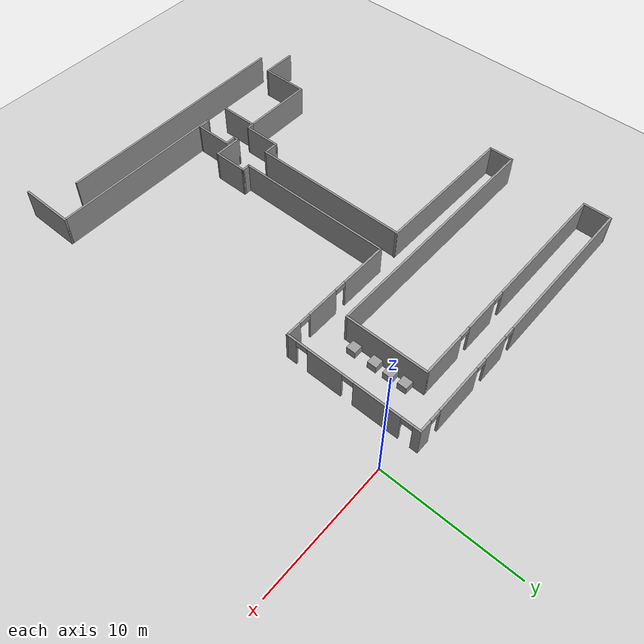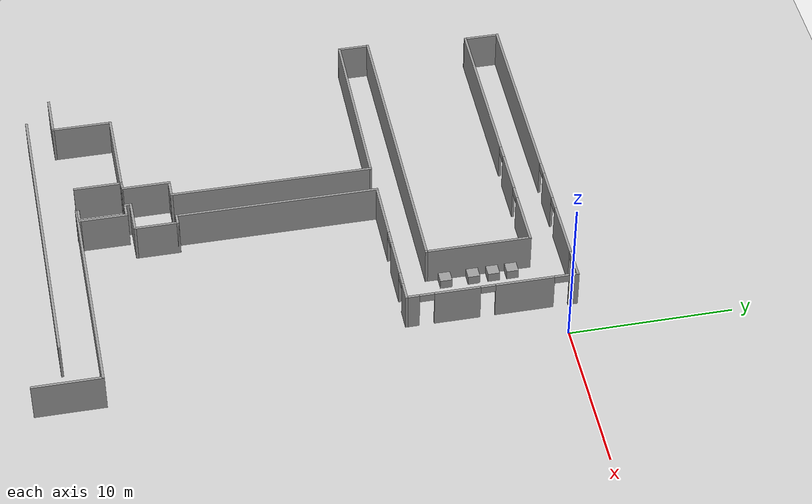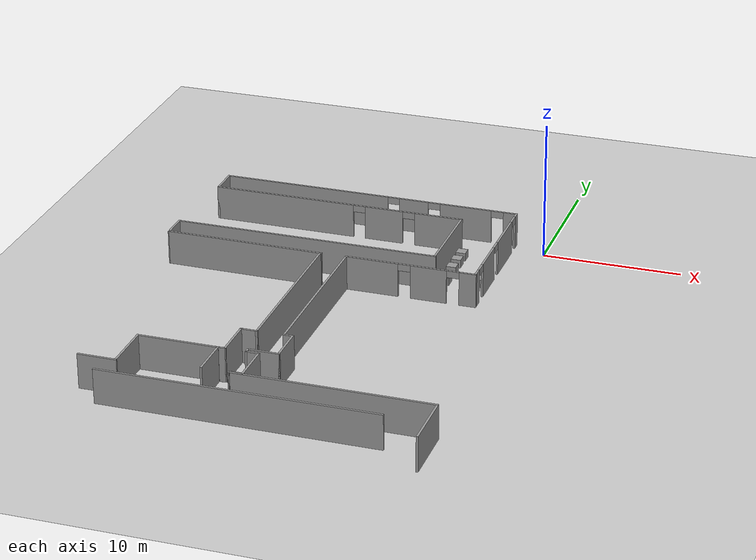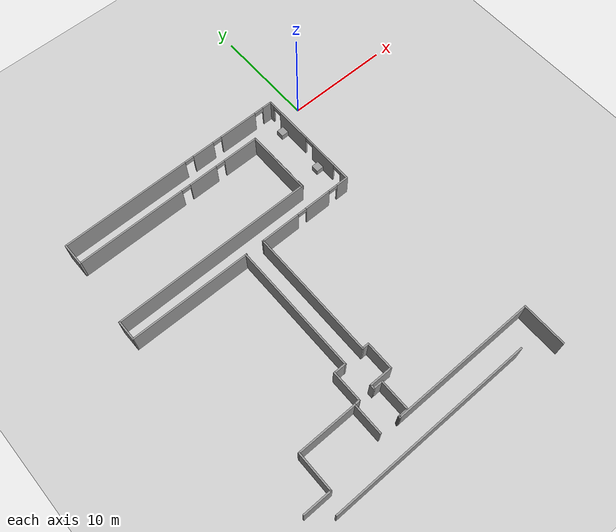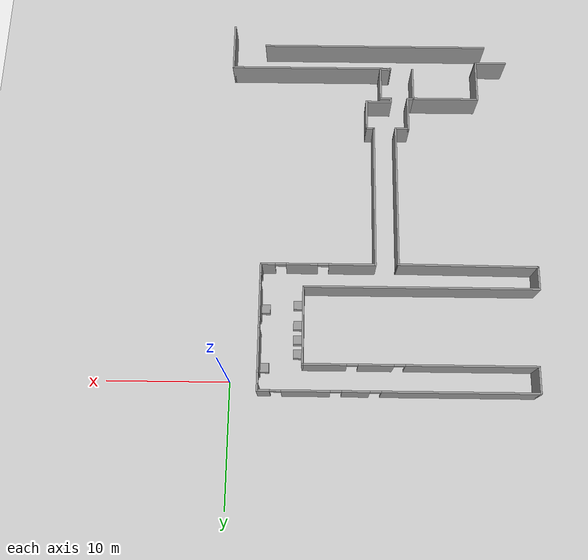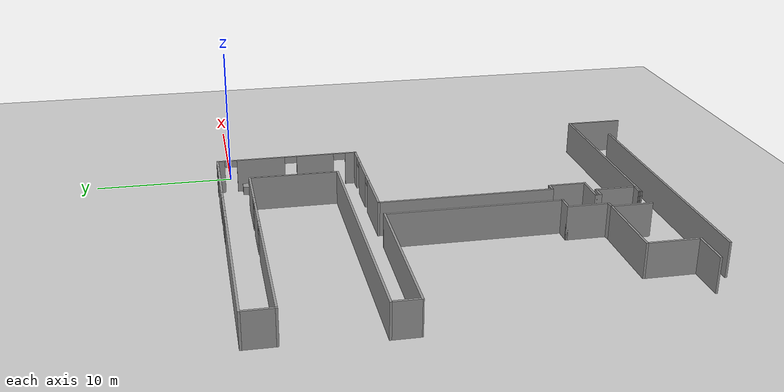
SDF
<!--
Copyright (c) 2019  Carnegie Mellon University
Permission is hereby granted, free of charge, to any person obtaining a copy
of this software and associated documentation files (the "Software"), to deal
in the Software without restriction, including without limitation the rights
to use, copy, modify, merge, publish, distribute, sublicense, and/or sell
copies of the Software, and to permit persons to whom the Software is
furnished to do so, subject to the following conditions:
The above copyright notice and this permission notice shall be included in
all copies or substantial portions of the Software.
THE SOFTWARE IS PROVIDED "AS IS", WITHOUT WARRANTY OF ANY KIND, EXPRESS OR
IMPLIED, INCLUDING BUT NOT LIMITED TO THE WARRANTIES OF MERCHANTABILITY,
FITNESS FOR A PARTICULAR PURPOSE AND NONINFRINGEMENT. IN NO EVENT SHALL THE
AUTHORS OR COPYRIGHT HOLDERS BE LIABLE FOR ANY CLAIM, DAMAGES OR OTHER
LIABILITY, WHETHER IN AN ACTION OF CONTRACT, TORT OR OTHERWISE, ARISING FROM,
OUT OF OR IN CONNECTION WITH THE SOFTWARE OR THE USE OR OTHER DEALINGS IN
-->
<sdf version="1.6">
 <world name="default">
  <light name="sun" type="directional">
   <pose>0 0 10 0 -0 0</pose>
   <diffuse>0.8 0.8 0.8 1</diffuse>
   <specular>0.1 0.1 0.1 1</specular>
   <attenuation>
    <range>1000</range>
    <constant>0.9</constant>
    <linear>0.01</linear>
    <quadratic>0.001</quadratic>
   </attenuation>
   <direction>-0.5 0.5 -1</direction>
  </light>
  <model name="ground_plane">
   <static>1</static>
   <link name="link">
    <collision name="collision">
     <geometry><plane><normal>0 0 1</normal><size>100 100</size></plane></geometry>
     <surface><friction><ode><mu>100</mu><mu2>50</mu2></ode></friction></surface>
    </collision>
    <visual name="visual">
     <cast_shadows>0</cast_shadows>
     <geometry><plane><normal>0 0 1</normal><size>100 100</size></plane></geometry>
     <material>
      <script><uri>file://media/materials/scripts/gazebo.material</uri><name>Gazebo/Grey</name></script>
     </material>
    </visual>
   </link>
  </model>
  <gravity>0 0 -9.8</gravity>
  <magnetic_field>6e-06 2.3e-05 -4.2e-05</magnetic_field>
  <atmosphere type="adiabatic"/>
  <physics name="default_physics" default="0" type="ode">
   <max_step_size>0.001</max_step_size>
   <real_time_factor>1</real_time_factor>
   <real_time_update_rate>1000</real_time_update_rate>
  </physics>
  <scene><ambient>0.4 0.4 0.4 1</ambient><background>0.7 0.7 0.7 1</background><shadows>1</shadows></scene>
  <spherical_coordinates>
   <surface_model>EARTH_WGS84</surface_model>
   <latitude_deg>0</latitude_deg>
   <longitude_deg>0</longitude_deg>
   <elevation>0</elevation>
   <heading_deg>0</heading_deg>
  </spherical_coordinates>
  <model name="my_lab">
   <pose>-12.1716 -15.3542 0 0 -0 0</pose>
   <link name="Wall_0">
    <pose>-1.23673 16.3483 0 0 -0 0</pose>
    <visual name="Wall_0_Visual_0">
     <pose>-4.88863 0 1.25 0 -0 0</pose>
     <geometry><box><size>12.4727 0.15 2.5</size></box></geometry>
     <material>
      <script><uri>file://media/materials/scripts/gazebo.material</uri><name>Gazebo/Grey</name></script>
      <ambient>1 1 1 1</ambient>
     </material>
    </visual>
    <collision name="Wall_0_Collision_0">
     <geometry><box><size>12.4727 0.15 2.5</size></box></geometry>
     <pose>-4.88863 0 1.25 0 -0 0</pose>
    </collision>
    <visual name="Wall_0_Visual_1">
     <pose>3.34648 0 1.25 0 -0 0</pose>
     <geometry><box><size>2.19749 0.15 2.5</size></box></geometry>
     <material>
      <script><uri>file://media/materials/scripts/gazebo.material</uri><name>Gazebo/Grey</name></script>
      <ambient>1 1 1 1</ambient>
     </material>
    </visual>
    <collision name="Wall_0_Collision_1">
     <geometry><box><size>2.19749 0.15 2.5</size></box></geometry>
     <pose>3.34648 0 1.25 0 -0 0</pose>
    </collision>
    <visual name="Wall_0_Visual_2">
     <pose>7.26822 0 1.25 0 -0 0</pose>
     <geometry><box><size>3.84599 0.15 2.5</size></box></geometry>
     <material>
      <script><uri>file://media/materials/scripts/gazebo.material</uri><name>Gazebo/Grey</name></script>
      <ambient>1 1 1 1</ambient>
     </material>
    </visual>
    <collision name="Wall_0_Collision_2">
     <geometry><box><size>3.84599 0.15 2.5</size></box></geometry>
     <pose>7.26822 0 1.25 0 -0 0</pose>
    </collision>
    <visual name="Wall_0_Visual_3">
     <pose>10.6081 0 1.25 0 -0 0</pose>
     <geometry><box><size>1.03378 0.15 2.5</size></box></geometry>
     <material>
      <script><uri>file://media/materials/scripts/gazebo.material</uri><name>Gazebo/Grey</name></script>
      <ambient>1 1 1 1</ambient>
     </material>
    </visual>
    <collision name="Wall_0_Collision_3">
     <geometry><box><size>1.03378 0.15 2.5</size></box></geometry>
     <pose>10.6081 0 1.25 0 -0 0</pose>
    </collision>
    <visual name="Wall_0_Visual_4">
     <pose>1.79773 0 2.25 0 -0 0</pose>
     <geometry><box><size>0.9 0.15 0.5</size></box></geometry>
     <material>
      <script><uri>file://media/materials/scripts/gazebo.material</uri><name>Gazebo/Grey</name></script>
      <ambient>1 1 1 1</ambient>
     </material>
    </visual>
    <collision name="Wall_0_Collision_4">
     <geometry><box><size>0.9 0.15 0.5</size></box></geometry>
     <pose>1.79773 0 2.25 0 -0 0</pose>
    </collision>
    <visual name="Wall_0_Visual_5">
     <pose>4.89522 0 2.25 0 -0 0</pose>
     <geometry><box><size>0.9 0.15 0.5</size></box></geometry>
     <material>
      <script><uri>file://media/materials/scripts/gazebo.material</uri><name>Gazebo/Grey</name></script>
      <ambient>1 1 1 1</ambient>
     </material>
    </visual>
    <collision name="Wall_0_Collision_5">
     <geometry><box><size>0.9 0.15 0.5</size></box></geometry>
     <pose>4.89522 0 2.25 0 -0 0</pose>
    </collision>
    <visual name="Wall_0_Visual_6">
     <pose>9.64122 0 2.25 0 -0 0</pose>
     <geometry><box><size>0.9 0.15 0.5</size></box></geometry>
     <material>
      <script><uri>file://media/materials/scripts/gazebo.material</uri><name>Gazebo/Grey</name></script>
      <ambient>1 1 1 1</ambient>
     </material>
    </visual>
    <collision name="Wall_0_Collision_6">
     <geometry><box><size>0.9 0.15 0.5</size></box></geometry>
     <pose>9.64122 0 2.25 0 -0 0</pose>
    </collision>
   </link>
   <link name="Wall_1">
    <pose>9.81326 11.1733 0 0 0 -1.5708</pose>
    <visual name="Wall_1_Visual_0">
     <pose>-4.95251 0 1.25 0 -0 0</pose>
     <geometry><box><size>0.594974 0.15 2.5</size></box></geometry>
     <material>
      <script><uri>file://media/materials/scripts/gazebo.material</uri><name>Gazebo/Grey</name></script>
      <ambient>1 1 1 1</ambient>
     </material>
    </visual>
    <collision name="Wall_1_Collision_0">
     <geometry><box><size>0.594974 0.15 2.5</size></box></geometry>
     <pose>-4.95251 0 1.25 0 -0 0</pose>
    </collision>
    <visual name="Wall_1_Visual_1">
     <pose>-1.96947 0 1.25 0 -0 0</pose>
     <geometry><box><size>3.57111 0.15 2.5</size></box></geometry>
     <material>
      <script><uri>file://media/materials/scripts/gazebo.material</uri><name>Gazebo/Grey</name></script>
      <ambient>1 1 1 1</ambient>
     </material>
    </visual>
    <collision name="Wall_1_Collision_1">
     <geometry><box><size>3.57111 0.15 2.5</size></box></geometry>
     <pose>-1.96947 0 1.25 0 -0 0</pose>
    </collision>
    <visual name="Wall_1_Visual_2">
     <pose>2.10843 0 1.25 0 -0 0</pose>
     <geometry><box><size>2.78469 0.15 2.5</size></box></geometry>
     <material>
      <script><uri>file://media/materials/scripts/gazebo.material</uri><name>Gazebo/Grey</name></script>
      <ambient>1 1 1 1</ambient>
     </material>
    </visual>
    <collision name="Wall_1_Collision_2">
     <geometry><box><size>2.78469 0.15 2.5</size></box></geometry>
     <pose>2.10843 0 1.25 0 -0 0</pose>
    </collision>
    <visual name="Wall_1_Visual_3">
     <pose>4.82539 0 1.25 0 -0 0</pose>
     <geometry><box><size>0.849222 0.15 2.5</size></box></geometry>
     <material>
      <script><uri>file://media/materials/scripts/gazebo.material</uri><name>Gazebo/Grey</name></script>
      <ambient>1 1 1 1</ambient>
     </material>
    </visual>
    <collision name="Wall_1_Collision_3">
     <geometry><box><size>0.849222 0.15 2.5</size></box></geometry>
     <pose>4.82539 0 1.25 0 -0 0</pose>
    </collision>
    <visual name="Wall_1_Visual_4">
     <pose>-4.20503 0 2.25 0 -0 0</pose>
     <geometry><box><size>0.9 0.15 0.5</size></box></geometry>
     <material>
      <script><uri>file://media/materials/scripts/gazebo.material</uri><name>Gazebo/Grey</name></script>
      <ambient>1 1 1 1</ambient>
     </material>
    </visual>
    <collision name="Wall_1_Collision_4">
     <geometry><box><size>0.9 0.15 0.5</size></box></geometry>
     <pose>-4.20503 0 2.25 0 -0 0</pose>
    </collision>
    <visual name="Wall_1_Visual_5">
     <pose>0.266085 0 2.25 0 -0 0</pose>
     <geometry><box><size>0.9 0.15 0.5</size></box></geometry>
     <material>
      <script><uri>file://media/materials/scripts/gazebo.material</uri><name>Gazebo/Grey</name></script>
      <ambient>1 1 1 1</ambient>
     </material>
    </visual>
    <collision name="Wall_1_Collision_5">
     <geometry><box><size>0.9 0.15 0.5</size></box></geometry>
     <pose>0.266085 0 2.25 0 -0 0</pose>
    </collision>
    <visual name="Wall_1_Visual_6">
     <pose>3.95078 0 2.25 0 -0 0</pose>
     <geometry><box><size>0.9 0.15 0.5</size></box></geometry>
     <material>
      <script><uri>file://media/materials/scripts/gazebo.material</uri><name>Gazebo/Grey</name></script>
      <ambient>1 1 1 1</ambient>
     </material>
    </visual>
    <collision name="Wall_1_Collision_6">
     <geometry><box><size>0.9 0.15 0.5</size></box></geometry>
     <pose>3.95078 0 2.25 0 -0 0</pose>
    </collision>
   </link>
   <link name="Wall_10">
    <collision name="Wall_10_Collision">
     <geometry><box><size>2 0.15 2.5</size></box></geometry>
     <pose>0 0 1.25 0 -0 0</pose>
    </collision>
    <visual name="Wall_10_Visual">
     <pose>0 0 1.25 0 -0 0</pose>
     <geometry><box><size>2 0.15 2.5</size></box></geometry>
     <material>
      <script><uri>file://media/materials/scripts/gazebo.material</uri><name>Gazebo/Grey</name></script>
      <ambient>1 1 1 1</ambient>
     </material>
    </visual>
    <pose>-12.7867 6.9733 0 0 0 -1.5708</pose>
   </link>
   <link name="Wall_11">
    <collision name="Wall_11_Collision">
     <geometry><box><size>11.5576 0.15 2.5</size></box></geometry>
     <pose>0 0 1.25 0 -0 0</pose>
    </collision>
    <visual name="Wall_11_Visual">
     <pose>0 0 1.25 0 -0 0</pose>
     <geometry><box><size>11.5576 0.15 2.5</size></box></geometry>
     <material>
      <script><uri>file://media/materials/scripts/gazebo.material</uri><name>Gazebo/Grey</name></script>
      <ambient>1 1 1 1</ambient>
     </material>
    </visual>
    <pose>-7.08316 5.99887 0 0 0 -0.008666</pose>
   </link>
   <link name="Wall_12">
    <collision name="Wall_12_Collision">
     <geometry><box><size>12.5 0.15 2.5</size></box></geometry>
     <pose>0 0 1.25 0 -0 0</pose>
    </collision>
    <visual name="Wall_12_Visual">
     <pose>0 0 1.25 0 -0 0</pose>
     <geometry><box><size>12.5 0.15 2.5</size></box></geometry>
     <material>
      <script><uri>file://media/materials/scripts/gazebo.material</uri><name>Gazebo/Grey</name></script>
      <ambient>1 1 1 1</ambient>
     </material>
    </visual>
    <pose>-1.4198 -0.225562 0 0 0 -1.5708</pose>
   </link>
   <link name="Wall_14">
    <collision name="Wall_14_Collision">
     <geometry><box><size>2.75 0.15 2.5</size></box></geometry>
     <pose>0 0 1.25 0 -0 0</pose>
    </collision>
    <visual name="Wall_14_Visual">
     <pose>0 0 1.25 0 -0 0</pose>
     <geometry><box><size>2.75 0.15 2.5</size></box></geometry>
     <material>
      <script><uri>file://media/materials/scripts/gazebo.material</uri><name>Gazebo/Grey</name></script>
      <ambient>1 1 1 1</ambient>
     </material>
    </visual>
    <pose>1.06326 -7.6517 0 0 0 -1.5708</pose>
   </link>
   <link name="Wall_15">
    <collision name="Wall_15_Collision">
     <geometry><box><size>2.25 0.15 2.5</size></box></geometry>
     <pose>0 0 1.25 0 -0 0</pose>
    </collision>
    <visual name="Wall_15_Visual">
     <pose>0 0 1.25 0 -0 0</pose>
     <geometry><box><size>2.25 0.15 2.5</size></box></geometry>
     <material>
      <script><uri>file://media/materials/scripts/gazebo.material</uri><name>Gazebo/Grey</name></script>
      <ambient>1 1 1 1</ambient>
     </material>
    </visual>
    <pose>0.013265 -8.9517 0 0 -0 3.14159</pose>
   </link>
   <link name="Wall_16">
    <collision name="Wall_16_Collision">
     <geometry><box><size>0.5 0.15 2.5</size></box></geometry>
     <pose>0 0 1.25 0 -0 0</pose>
    </collision>
    <visual name="Wall_16_Visual">
     <pose>0 0 1.25 0 -0 0</pose>
     <geometry><box><size>0.5 0.15 2.5</size></box></geometry>
     <material>
      <script><uri>file://media/materials/scripts/gazebo.material</uri><name>Gazebo/Grey</name></script>
      <ambient>1 1 1 1</ambient>
     </material>
    </visual>
    <pose>-1.03674 -9.1267 0 0 0 -1.5708</pose>
   </link>
   <link name="Wall_17">
    <collision name="Wall_17_Collision">
     <geometry><box><size>1 0.15 2.5</size></box></geometry>
     <pose>0 0 1.25 0 -0 0</pose>
    </collision>
    <visual name="Wall_17_Visual">
     <pose>0 0 1.25 0 -0 0</pose>
     <geometry><box><size>1 0.15 2.5</size></box></geometry>
     <material>
      <script><uri>file://media/materials/scripts/gazebo.material</uri><name>Gazebo/Grey</name></script>
      <ambient>1 1 1 1</ambient>
     </material>
    </visual>
    <pose>-0.611735 -9.3017 0 0 -0 0</pose>
   </link>
   <link name="Wall_18">
    <collision name="Wall_18_Collision">
     <geometry><box><size>3 0.15 2.5</size></box></geometry>
     <pose>0 0 1.25 0 -0 0</pose>
    </collision>
    <visual name="Wall_18_Visual">
     <pose>0 0 1.25 0 -0 0</pose>
     <geometry><box><size>3 0.15 2.5</size></box></geometry>
     <material>
      <script><uri>file://media/materials/scripts/gazebo.material</uri><name>Gazebo/Grey</name></script>
      <ambient>1 1 1 1</ambient>
     </material>
    </visual>
    <pose>-0.186735 -10.7267 0 0 0 -1.5708</pose>
   </link>
   <link name="Wall_2">
    <pose>5.13826 5.9983 0 0 -0 3.14159</pose>
    <visual name="Wall_2_Visual_0">
     <pose>-4.13574 0 1.25 0 -0 0</pose>
     <geometry><box><size>1.22853 0.15 2.5</size></box></geometry>
     <material>
      <script><uri>file://media/materials/scripts/gazebo.material</uri><name>Gazebo/Grey</name></script>
      <ambient>1 1 1 1</ambient>
     </material>
    </visual>
    <collision name="Wall_2_Collision_0">
     <geometry><box><size>1.22853 0.15 2.5</size></box></geometry>
     <pose>-4.13574 0 1.25 0 -0 0</pose>
    </collision>
    <visual name="Wall_2_Visual_1">
     <pose>-1.32577 0 1.25 0 -0 0</pose>
     <geometry><box><size>2.5914 0.15 2.5</size></box></geometry>
     <material>
      <script><uri>file://media/materials/scripts/gazebo.material</uri><name>Gazebo/Grey</name></script>
      <ambient>1 1 1 1</ambient>
     </material>
    </visual>
    <collision name="Wall_2_Collision_1">
     <geometry><box><size>2.5914 0.15 2.5</size></box></geometry>
     <pose>-1.32577 0 1.25 0 -0 0</pose>
    </collision>
    <visual name="Wall_2_Visual_2">
     <pose>2.80996 0 1.25 0 -0 0</pose>
     <geometry><box><size>3.88007 0.15 2.5</size></box></geometry>
     <material>
      <script><uri>file://media/materials/scripts/gazebo.material</uri><name>Gazebo/Grey</name></script>
      <ambient>1 1 1 1</ambient>
     </material>
    </visual>
    <collision name="Wall_2_Collision_2">
     <geometry><box><size>3.88007 0.15 2.5</size></box></geometry>
     <pose>2.80996 0 1.25 0 -0 0</pose>
    </collision>
    <visual name="Wall_2_Visual_3">
     <pose>-3.07147 0 2.25 0 -0 0</pose>
     <geometry><box><size>0.9 0.15 0.5</size></box></geometry>
     <material>
      <script><uri>file://media/materials/scripts/gazebo.material</uri><name>Gazebo/Grey</name></script>
      <ambient>1 1 1 1</ambient>
     </material>
    </visual>
    <collision name="Wall_2_Collision_3">
     <geometry><box><size>0.9 0.15 0.5</size></box></geometry>
     <pose>-3.07147 0 2.25 0 -0 0</pose>
    </collision>
    <visual name="Wall_2_Visual_4">
     <pose>0.419926 0 2.25 0 -0 0</pose>
     <geometry><box><size>0.9 0.15 0.5</size></box></geometry>
     <material>
      <script><uri>file://media/materials/scripts/gazebo.material</uri><name>Gazebo/Grey</name></script>
      <ambient>1 1 1 1</ambient>
     </material>
    </visual>
    <collision name="Wall_2_Collision_4">
     <geometry><box><size>0.9 0.15 0.5</size></box></geometry>
     <pose>0.419926 0 2.25 0 -0 0</pose>
    </collision>
   </link>
   <link name="Wall_20">
    <collision name="Wall_20_Collision">
     <geometry><box><size>1 0.15 2.5</size></box></geometry>
     <pose>0 0 1.25 0 -0 0</pose>
    </collision>
    <visual name="Wall_20_Visual">
     <pose>0 0 1.25 0 -0 0</pose>
     <geometry><box><size>1 0.15 2.5</size></box></geometry>
     <material>
      <script><uri>file://media/materials/scripts/gazebo.material</uri><name>Gazebo/Grey</name></script>
      <ambient>1 1 1 1</ambient>
     </material>
    </visual>
    <pose>-0.611735 -12.1517 0 0 -0 3.14159</pose>
   </link>
   <link name="Wall_21">
    <collision name="Wall_21_Collision">
     <geometry><box><size>0.25 0.15 2.5</size></box></geometry>
     <pose>0 0 1.25 0 -0 0</pose>
    </collision>
    <visual name="Wall_21_Visual">
     <pose>0 0 1.25 0 -0 0</pose>
     <geometry><box><size>0.25 0.15 2.5</size></box></geometry>
     <material>
      <script><uri>file://media/materials/scripts/gazebo.material</uri><name>Gazebo/Grey</name></script>
      <ambient>1 1 1 1</ambient>
     </material>
    </visual>
    <pose>-1.04968 -12.2 0 0 0 -1.8326</pose>
   </link>
   <link name="Wall_22">
    <collision name="Wall_22_Collision">
     <geometry><box><size>14 0.15 2.5</size></box></geometry>
     <pose>0 0 1.25 0 -0 0</pose>
    </collision>
    <visual name="Wall_22_Visual">
     <pose>0 0 1.25 0 -0 0</pose>
     <geometry><box><size>14 0.15 2.5</size></box></geometry>
     <material>
      <script><uri>file://media/materials/scripts/gazebo.material</uri><name>Gazebo/Grey</name></script>
      <ambient>1 1 1 1</ambient>
     </material>
    </visual>
    <pose>5.86238 -12.2483 0 0 -0 0</pose>
   </link>
   <link name="Wall_23">
    <collision name="Wall_23_Collision">
     <geometry><box><size>4.25 0.15 2.5</size></box></geometry>
     <pose>0 0 1.25 0 -0 0</pose>
    </collision>
    <visual name="Wall_23_Visual">
     <pose>0 0 1.25 0 -0 0</pose>
     <geometry><box><size>4.25 0.15 2.5</size></box></geometry>
     <material>
      <script><uri>file://media/materials/scripts/gazebo.material</uri><name>Gazebo/Grey</name></script>
      <ambient>1 1 1 1</ambient>
     </material>
    </visual>
    <pose>12.7874 -14.2983 0 0 0 -1.5708</pose>
   </link>
   <link name="Wall_25">
    <collision name="Wall_25_Collision">
     <geometry><box><size>19.5 0.15 2.5</size></box></geometry>
     <pose>0 0 1.25 0 -0 0</pose>
    </collision>
    <visual name="Wall_25_Visual">
     <pose>0 0 1.25 0 -0 0</pose>
     <geometry><box><size>19.5 0.15 2.5</size></box></geometry>
     <material>
      <script><uri>file://media/materials/scripts/gazebo.material</uri><name>Gazebo/Grey</name></script>
      <ambient>1 1 1 1</ambient>
     </material>
    </visual>
    <pose>0.259837 -14.4703 0 0 -0 3.14159</pose>
   </link>
   <link name="Wall_27">
    <collision name="Wall_27_Collision">
     <geometry><box><size>3 0.15 2.5</size></box></geometry>
     <pose>0 0 1.25 0 -0 0</pose>
    </collision>
    <visual name="Wall_27_Visual">
     <pose>0 0 1.25 0 -0 0</pose>
     <geometry><box><size>3 0.15 2.5</size></box></geometry>
     <material>
      <script><uri>file://media/materials/scripts/gazebo.material</uri><name>Gazebo/Grey</name></script>
      <ambient>1 1 1 1</ambient>
     </material>
    </visual>
    <pose>-3.00483 -10.7205 0 0 -0 1.5708</pose>
   </link>
   <link name="Wall_28">
    <collision name="Wall_28_Collision">
     <geometry><box><size>0.637101 0.15 2.5</size></box></geometry>
     <pose>0 0 1.25 0 -0 0</pose>
    </collision>
    <visual name="Wall_28_Visual">
     <pose>0 0 1.25 0 -0 0</pose>
     <geometry><box><size>0.637101 0.15 2.5</size></box></geometry>
     <material>
      <script><uri>file://media/materials/scripts/gazebo.material</uri><name>Gazebo/Grey</name></script>
      <ambient>1 1 1 1</ambient>
     </material>
    </visual>
    <pose>-2.76232 -9.27302 0 0 -0 0.092337</pose>
   </link>
   <link name="Wall_29">
    <collision name="Wall_29_Collision">
     <geometry><box><size>3 0.15 2.5</size></box></geometry>
     <pose>0 0 1.25 0 -0 0</pose>
    </collision>
    <visual name="Wall_29_Visual">
     <pose>0 0 1.25 0 -0 0</pose>
     <geometry><box><size>3 0.15 2.5</size></box></geometry>
     <material>
      <script><uri>file://media/materials/scripts/gazebo.material</uri><name>Gazebo/Grey</name></script>
      <ambient>1 1 1 1</ambient>
     </material>
    </visual>
    <pose>-2.5198 -7.82556 0 0 -0 1.5708</pose>
   </link>
   <link name="Wall_3">
    <collision name="Wall_3_Collision">
     <geometry><box><size>12.5 0.15 2.5</size></box></geometry>
     <pose>0 0 1.25 0 -0 0</pose>
    </collision>
    <visual name="Wall_3_Visual">
     <pose>0 0 1.25 0 -0 0</pose>
     <geometry><box><size>12.5 0.15 2.5</size></box></geometry>
     <material>
      <script><uri>file://media/materials/scripts/gazebo.material</uri><name>Gazebo/Grey</name></script>
      <ambient>1 1 1 1</ambient>
     </material>
    </visual>
    <pose>0.463264 -0.176703 0 0 0 -1.5708</pose>
   </link>
   <link name="Wall_32">
    <collision name="Wall_32_Collision">
     <geometry><box><size>1.25 0.15 2.5</size></box></geometry>
     <pose>0 0 1.25 0 -0 0</pose>
    </collision>
    <visual name="Wall_32_Visual">
     <pose>0 0 1.25 0 -0 0</pose>
     <geometry><box><size>1.25 0.15 2.5</size></box></geometry>
     <material>
      <script><uri>file://media/materials/scripts/gazebo.material</uri><name>Gazebo/Grey</name></script>
      <ambient>1 1 1 1</ambient>
     </material>
    </visual>
    <pose>-1.9698 -6.40056 0 0 -0 0</pose>
   </link>
   <link name="Wall_34">
    <collision name="Wall_34_Collision">
     <geometry><box><size>5.75 0.15 2.5</size></box></geometry>
     <pose>0 0 1.25 0 -0 0</pose>
    </collision>
    <visual name="Wall_34_Visual">
     <pose>0 0 1.25 0 -0 0</pose>
     <geometry><box><size>5.75 0.15 2.5</size></box></geometry>
     <material>
      <script><uri>file://media/materials/scripts/gazebo.material</uri><name>Gazebo/Grey</name></script>
      <ambient>1 1 1 1</ambient>
     </material>
    </visual>
    <pose>-5.80483 -9.29548 0 0 -0 3.14159</pose>
   </link>
   <link name="Wall_35">
    <collision name="Wall_35_Collision">
     <geometry><box><size>3.75 0.15 2.5</size></box></geometry>
     <pose>0 0 1.25 0 -0 0</pose>
    </collision>
    <visual name="Wall_35_Visual">
     <pose>0 0 1.25 0 -0 0</pose>
     <geometry><box><size>3.75 0.15 2.5</size></box></geometry>
     <material>
      <script><uri>file://media/materials/scripts/gazebo.material</uri><name>Gazebo/Grey</name></script>
      <ambient>1 1 1 1</ambient>
     </material>
    </visual>
    <pose>-8.60483 -11.0955 0 0 0 -1.5708</pose>
   </link>
   <link name="Wall_36">
    <collision name="Wall_36_Collision">
     <geometry><box><size>2.75 0.15 2.5</size></box></geometry>
     <pose>0 0 1.25 0 -0 0</pose>
    </collision>
    <visual name="Wall_36_Visual">
     <pose>0 0 1.25 0 -0 0</pose>
     <geometry><box><size>2.75 0.15 2.5</size></box></geometry>
     <material>
      <script><uri>file://media/materials/scripts/gazebo.material</uri><name>Gazebo/Grey</name></script>
      <ambient>1 1 1 1</ambient>
     </material>
    </visual>
    <pose>-9.90483 -12.8955 0 0 -0 3.14159</pose>
   </link>
   <link name="Wall_4">
    <collision name="Wall_4_Collision">
     <geometry><box><size>0.75 0.15 2.5</size></box></geometry>
     <pose>0 0 1.25 0 -0 0</pose>
    </collision>
    <visual name="Wall_4_Visual">
     <pose>0 0 1.25 0 -0 0</pose>
     <geometry><box><size>0.75 0.15 2.5</size></box></geometry>
     <material>
      <script><uri>file://media/materials/scripts/gazebo.material</uri><name>Gazebo/Grey</name></script>
      <ambient>1 1 1 1</ambient>
     </material>
    </visual>
    <pose>0.763265 -6.3517 0 0 -0 0</pose>
   </link>
   <link name="Wall_6">
    <collision name="Wall_6_Collision">
     <geometry><box><size>2.25 0.15 2.5</size></box></geometry>
     <pose>0 0 1.25 0 -0 0</pose>
    </collision>
    <visual name="Wall_6_Visual">
     <pose>0 0 1.25 0 -0 0</pose>
     <geometry><box><size>2.25 0.15 2.5</size></box></geometry>
     <material>
      <script><uri>file://media/materials/scripts/gazebo.material</uri><name>Gazebo/Grey</name></script>
      <ambient>1 1 1 1</ambient>
     </material>
    </visual>
    <pose>-12.2867 15.2983 0 0 0 -1.5708</pose>
   </link>
   <link name="Wall_7">
    <pose>-2.98673 14.2483 0 0 -0 0</pose>
    <visual name="Wall_7_Visual_0">
     <pose>-4.09966 0 1.25 0 -0 0</pose>
     <geometry><box><size>10.5507 0.15 2.5</size></box></geometry>
     <material>
      <script><uri>file://media/materials/scripts/gazebo.material</uri><name>Gazebo/Grey</name></script>
      <ambient>1 1 1 1</ambient>
     </material>
    </visual>
    <collision name="Wall_7_Collision_0">
     <geometry><box><size>10.5507 0.15 2.5</size></box></geometry>
     <pose>-4.09966 0 1.25 0 -0 0</pose>
    </collision>
    <visual name="Wall_7_Visual_1">
     <pose>3.48959 0 1.25 0 -0 0</pose>
     <geometry><box><size>2.82783 0.15 2.5</size></box></geometry>
     <material>
      <script><uri>file://media/materials/scripts/gazebo.material</uri><name>Gazebo/Grey</name></script>
      <ambient>1 1 1 1</ambient>
     </material>
    </visual>
    <collision name="Wall_7_Collision_1">
     <geometry><box><size>2.82783 0.15 2.5</size></box></geometry>
     <pose>3.48959 0 1.25 0 -0 0</pose>
    </collision>
    <visual name="Wall_7_Visual_2">
     <pose>7.58925 0 1.25 0 -0 0</pose>
     <geometry><box><size>3.5715 0.15 2.5</size></box></geometry>
     <material>
      <script><uri>file://media/materials/scripts/gazebo.material</uri><name>Gazebo/Grey</name></script>
      <ambient>1 1 1 1</ambient>
     </material>
    </visual>
    <collision name="Wall_7_Collision_2">
     <geometry><box><size>3.5715 0.15 2.5</size></box></geometry>
     <pose>7.58925 0 1.25 0 -0 0</pose>
    </collision>
    <visual name="Wall_7_Visual_3">
     <pose>1.62567 0 2.25 0 -0 0</pose>
     <geometry><box><size>0.9 0.15 0.5</size></box></geometry>
     <material>
      <script><uri>file://media/materials/scripts/gazebo.material</uri><name>Gazebo/Grey</name></script>
      <ambient>1 1 1 1</ambient>
     </material>
    </visual>
    <collision name="Wall_7_Collision_3">
     <geometry><box><size>0.9 0.15 0.5</size></box></geometry>
     <pose>1.62567 0 2.25 0 -0 0</pose>
    </collision>
    <visual name="Wall_7_Visual_4">
     <pose>5.35351 0 2.25 0 -0 0</pose>
     <geometry><box><size>0.9 0.15 0.5</size></box></geometry>
     <material>
      <script><uri>file://media/materials/scripts/gazebo.material</uri><name>Gazebo/Grey</name></script>
      <ambient>1 1 1 1</ambient>
     </material>
    </visual>
    <collision name="Wall_7_Collision_4">
     <geometry><box><size>0.9 0.15 0.5</size></box></geometry>
     <pose>5.35351 0 2.25 0 -0 0</pose>
    </collision>
   </link>
   <link name="Wall_8">
    <collision name="Wall_8_Collision">
     <geometry><box><size>6.5 0.15 2.5</size></box></geometry>
     <pose>0 0 1.25 0 -0 0</pose>
    </collision>
    <visual name="Wall_8_Visual">
     <pose>0 0 1.25 0 -0 0</pose>
     <geometry><box><size>6.5 0.15 2.5</size></box></geometry>
     <material>
      <script><uri>file://media/materials/scripts/gazebo.material</uri><name>Gazebo/Grey</name></script>
      <ambient>1 1 1 1</ambient>
     </material>
    </visual>
    <pose>6.31327 11.0733 0 0 0 -1.5708</pose>
   </link>
   <link name="Wall_9">
    <collision name="Wall_9_Collision">
     <geometry><box><size>19.25 0.15 2.5</size></box></geometry>
     <pose>0 0 1.25 0 -0 0</pose>
    </collision>
    <visual name="Wall_9_Visual">
     <pose>0 0 1.25 0 -0 0</pose>
     <geometry><box><size>19.25 0.15 2.5</size></box></geometry>
     <material>
      <script><uri>file://media/materials/scripts/gazebo.material</uri><name>Gazebo/Grey</name></script>
      <ambient>1 1 1 1</ambient>
     </material>
    </visual>
    <pose>-3.23673 7.8983 0 0 -0 3.14159</pose>
   </link>
   <static>1</static>
  </model>
  <model name="unit_box_0">
   <pose>-5.42935 -2.28893 0.306503 0 0 -4e-06</pose>
   <link name="link">
    <inertial>
     <mass>1</mass>
     <inertia>
      <ixx>0.166667</ixx>
      <ixy>0</ixy>
      <ixz>0</ixz>
      <iyy>0.166667</iyy>
      <iyz>0</iyz>
      <izz>0.166667</izz>
     </inertia>
    </inertial>
    <collision name="collision"><geometry><box><size>0.70793 0.723239 0.613007</size></box></geometry></collision>
    <visual name="visual">
     <geometry><box><size>0.70793 0.723239 0.613007</size></box></geometry>
     <material>
      <script><name>Gazebo/Grey</name><uri>file://media/materials/scripts/gazebo.material</uri></script>
     </material>
    </visual>
   </link>
  </model>
  <model name="unit_box_0_clone">
   <pose>-5.42935 -3.4462 0.306503 0 0 -4e-06</pose>
   <link name="link">
    <inertial>
     <mass>1</mass>
     <inertia>
      <ixx>0.166667</ixx>
      <ixy>0</ixy>
      <ixz>0</ixz>
      <iyy>0.166667</iyy>
      <iyz>0</iyz>
      <izz>0.166667</izz>
     </inertia>
    </inertial>
    <collision name="collision"><geometry><box><size>0.70793 0.723239 0.613007</size></box></geometry></collision>
    <visual name="visual">
     <geometry><box><size>0.70793 0.723239 0.613007</size></box></geometry>
     <material>
      <script><name>Gazebo/Grey</name><uri>file://media/materials/scripts/gazebo.material</uri></script>
     </material>
    </visual>
   </link>
  </model>
  <model name="unit_box_0_clone_0">
   <pose>-5.41427 -4.67159 0.306503 0 0 -4e-06</pose>
   <link name="link">
    <inertial>
     <mass>1</mass>
     <inertia>
      <ixx>0.166667</ixx>
      <ixy>0</ixy>
      <ixz>0</ixz>
      <iyy>0.166667</iyy>
      <iyz>0</iyz>
      <izz>0.166667</izz>
     </inertia>
    </inertial>
    <collision name="collision"><geometry><box><size>0.70793 0.723239 0.613007</size></box></geometry></collision>
    <visual name="visual">
     <geometry><box><size>0.70793 0.723239 0.613007</size></box></geometry>
     <material>
      <script><name>Gazebo/Grey</name><uri>file://media/materials/scripts/gazebo.material</uri></script>
     </material>
    </visual>
   </link>
  </model>
  <model name="unit_box_0_clone_1">
   <pose>-5.40094 -6.38158 0.306503 0 0 -4e-06</pose>
   <link name="link">
    <inertial>
     <mass>1</mass>
     <inertia>
      <ixx>0.166667</ixx>
      <ixy>0</ixy>
      <ixz>0</ixz>
      <iyy>0.166667</iyy>
      <iyz>0</iyz>
      <izz>0.166667</izz>
     </inertia>
    </inertial>
    <collision name="collision"><geometry><box><size>0.70793 0.723239 0.613007</size></box></geometry></collision>
    <visual name="visual">
     <geometry><box><size>0.70793 0.723239 0.613007</size></box></geometry>
     <material>
      <script><name>Gazebo/Grey</name><uri>file://media/materials/scripts/gazebo.material</uri></script>
     </material>
    </visual>
   </link>
  </model>
  <model name="unit_box_0_clone_2">
   <pose>-2.78932 -1.14534 0.306503 0 0 -4e-06</pose>
   <link name="link">
    <inertial>
     <mass>1</mass>
     <inertia>
      <ixx>0.166667</ixx>
      <ixy>0</ixy>
      <ixz>0</ixz>
      <iyy>0.166667</iyy>
      <iyz>0</iyz>
      <izz>0.166667</izz>
     </inertia>
    </inertial>
    <collision name="collision"><geometry><box><size>0.70793 0.723239 0.613007</size></box></geometry></collision>
    <visual name="visual">
     <geometry><box><size>0.70793 0.723239 0.613007</size></box></geometry>
     <material>
      <script><name>Gazebo/Grey</name><uri>file://media/materials/scripts/gazebo.material</uri></script>
     </material>
    </visual>
   </link>
  </model>
  <model name="unit_box_0_clone_3">
   <pose>-2.78732 -6.04049 0.306504 0 0 -4e-06</pose>
   <link name="link">
    <inertial>
     <mass>1</mass>
     <inertia>
      <ixx>0.166667</ixx>
      <ixy>0</ixy>
      <ixz>0</ixz>
      <iyy>0.166667</iyy>
      <iyz>0</iyz>
      <izz>0.166667</izz>
     </inertia>
    </inertial>
    <collision name="collision"><geometry><box><size>0.70793 0.723239 0.613007</size></box></geometry></collision>
    <visual name="visual">
     <geometry><box><size>0.70793 0.723239 0.613007</size></box></geometry>
     <material>
      <script><name>Gazebo/Grey</name><uri>file://media/materials/scripts/gazebo.material</uri></script>
     </material>
    </visual>
   </link>
  </model>
 </world>
</sdf>
